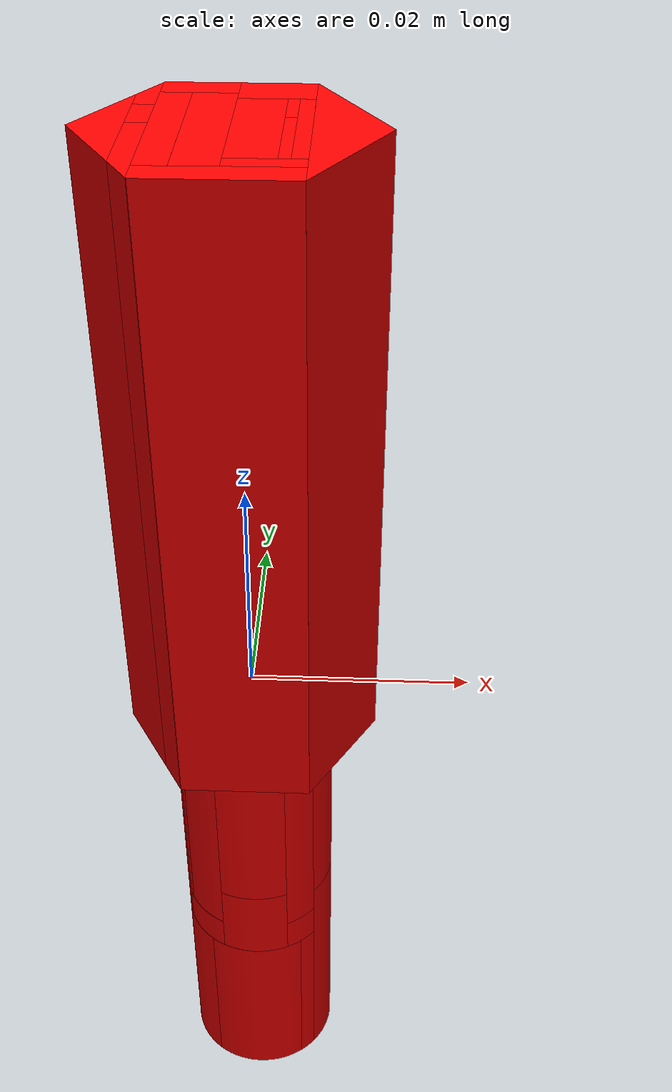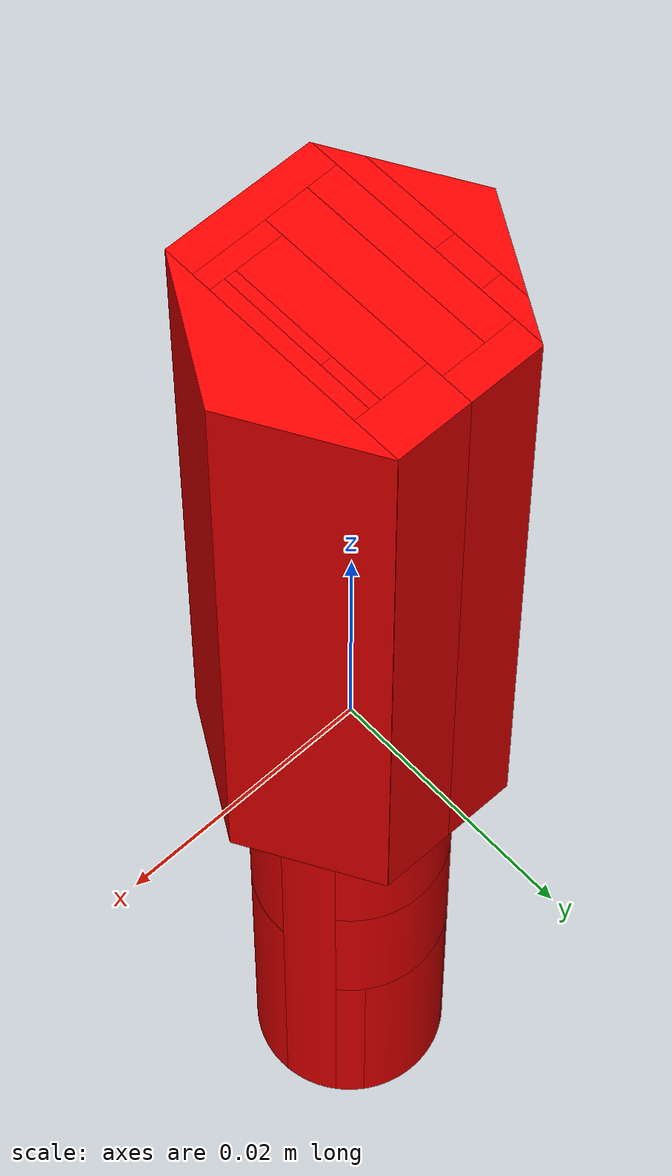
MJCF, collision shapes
<?xml version='1.0' encoding='utf-8'?>
<mujoco model="obj4">
  <asset>
    <mesh name="obj4" file="obj4.obj" scale="0.001 0.001 0.001" />
    <material name="mat4" rgba="1 0 0 1" />
    <mesh name="obj1_p0" file="obj4_part_0.obj" scale="0.001 0.001 0.001" />
    <mesh name="obj1_p1" file="obj4_part_1.obj" scale="0.001 0.001 0.001" />
    <mesh name="obj1_p2" file="obj4_part_2.obj" scale="0.001 0.001 0.001" />
    <mesh name="obj1_p3" file="obj4_part_3.obj" scale="0.001 0.001 0.001" />
    <mesh name="obj1_p4" file="obj4_part_4.obj" scale="0.001 0.001 0.001" />
    <mesh name="obj1_p5" file="obj4_part_5.obj" scale="0.001 0.001 0.001" />
    <mesh name="obj1_p6" file="obj4_part_6.obj" scale="0.001 0.001 0.001" />
    <mesh name="obj1_p7" file="obj4_part_7.obj" scale="0.001 0.001 0.001" />
    <mesh name="obj1_p8" file="obj4_part_8.obj" scale="0.001 0.001 0.001" />
    <mesh name="obj1_p9" file="obj4_part_9.obj" scale="0.001 0.001 0.001" />
    <mesh name="obj1_p10" file="obj4_part_10.obj" scale="0.001 0.001 0.001" />
    <mesh name="obj1_p11" file="obj4_part_11.obj" scale="0.001 0.001 0.001" />
    <mesh name="obj1_p12" file="obj4_part_12.obj" scale="0.001 0.001 0.001" />
    <mesh name="obj1_p13" file="obj4_part_13.obj" scale="0.001 0.001 0.001" />
    <mesh name="obj1_p14" file="obj4_part_14.obj" scale="0.001 0.001 0.001" />
    <mesh name="obj1_p15" file="obj4_part_15.obj" scale="0.001 0.001 0.001" />
    <mesh name="obj1_p16" file="obj4_part_16.obj" scale="0.001 0.001 0.001" />
    <mesh name="obj1_p17" file="obj4_part_17.obj" scale="0.001 0.001 0.001" />
    <mesh name="obj1_p18" file="obj4_part_18.obj" scale="0.001 0.001 0.001" />
    <mesh name="obj1_p19" file="obj4_part_19.obj" scale="0.001 0.001 0.001" />
    <mesh name="obj1_p20" file="obj4_part_20.obj" scale="0.001 0.001 0.001" />
    <mesh name="obj1_p21" file="obj4_part_21.obj" scale="0.001 0.001 0.001" />
    <mesh name="obj1_p22" file="obj4_part_22.obj" scale="0.001 0.001 0.001" />
    <mesh name="obj1_p23" file="obj4_part_23.obj" scale="0.001 0.001 0.001" />
    <mesh name="obj1_p24" file="obj4_part_24.obj" scale="0.001 0.001 0.001" />
    <mesh name="obj1_p25" file="obj4_part_25.obj" scale="0.001 0.001 0.001" />
    <mesh name="obj1_p26" file="obj4_part_26.obj" scale="0.001 0.001 0.001" />
    <mesh name="obj1_p27" file="obj4_part_27.obj" scale="0.001 0.001 0.001" />
    <mesh name="obj1_p28" file="obj4_part_28.obj" scale="0.001 0.001 0.001" />
    <mesh name="obj1_p29" file="obj4_part_29.obj" scale="0.001 0.001 0.001" />
    <mesh name="obj1_p30" file="obj4_part_30.obj" scale="0.001 0.001 0.001" />
    <mesh name="obj1_p31" file="obj4_part_31.obj" scale="0.001 0.001 0.001" />
    <mesh name="obj1_p32" file="obj4_part_32.obj" scale="0.001 0.001 0.001" />
    <mesh name="obj1_p33" file="obj4_part_33.obj" scale="0.001 0.001 0.001" />
    <mesh name="obj1_p34" file="obj4_part_34.obj" scale="0.001 0.001 0.001" />
    <mesh name="obj1_p35" file="obj4_part_35.obj" scale="0.001 0.001 0.001" />
    <mesh name="obj1_p36" file="obj4_part_36.obj" scale="0.001 0.001 0.001" />
  </asset>
  <worldbody>
    <body>
      <body name="object">
        <inertial pos="0 0 0" mass="0.1" diaginertia="0.0001 0.0001 0.0001" />
        <geom name="visual" mesh="obj4" type="mesh" group="1" contype="0" conaffinity="0" material="mat4" />
        <geom name="col_0" mesh="obj1_p0" type="mesh" group="0" contype="1" conaffinity="1" friction="0.95 0.3 0.1" solimp="0.9 0.95 0.001" solref="0.02 1" condim="4" material="mat4" />
        <geom name="col_1" mesh="obj1_p1" type="mesh" group="0" contype="1" conaffinity="1" friction="0.95 0.3 0.1" solimp="0.9 0.95 0.001" solref="0.02 1" condim="4" material="mat4" />
        <geom name="col_2" mesh="obj1_p2" type="mesh" group="0" contype="1" conaffinity="1" friction="0.95 0.3 0.1" solimp="0.9 0.95 0.001" solref="0.02 1" condim="4" material="mat4" />
        <geom name="col_3" mesh="obj1_p3" type="mesh" group="0" contype="1" conaffinity="1" friction="0.95 0.3 0.1" solimp="0.9 0.95 0.001" solref="0.02 1" condim="4" material="mat4" />
        <geom name="col_4" mesh="obj1_p4" type="mesh" group="0" contype="1" conaffinity="1" friction="0.95 0.3 0.1" solimp="0.9 0.95 0.001" solref="0.02 1" condim="4" material="mat4" />
        <geom name="col_5" mesh="obj1_p5" type="mesh" group="0" contype="1" conaffinity="1" friction="0.95 0.3 0.1" solimp="0.9 0.95 0.001" solref="0.02 1" condim="4" material="mat4" />
        <geom name="col_6" mesh="obj1_p6" type="mesh" group="0" contype="1" conaffinity="1" friction="0.95 0.3 0.1" solimp="0.9 0.95 0.001" solref="0.02 1" condim="4" material="mat4" />
        <geom name="col_7" mesh="obj1_p7" type="mesh" group="0" contype="1" conaffinity="1" friction="0.95 0.3 0.1" solimp="0.9 0.95 0.001" solref="0.02 1" condim="4" material="mat4" />
        <geom name="col_8" mesh="obj1_p8" type="mesh" group="0" contype="1" conaffinity="1" friction="0.95 0.3 0.1" solimp="0.9 0.95 0.001" solref="0.02 1" condim="4" material="mat4" />
        <geom name="col_9" mesh="obj1_p9" type="mesh" group="0" contype="1" conaffinity="1" friction="0.95 0.3 0.1" solimp="0.9 0.95 0.001" solref="0.02 1" condim="4" material="mat4" />
        <geom name="col_10" mesh="obj1_p10" type="mesh" group="0" contype="1" conaffinity="1" friction="0.95 0.3 0.1" solimp="0.9 0.95 0.001" solref="0.02 1" condim="4" material="mat4" />
        <geom name="col_11" mesh="obj1_p11" type="mesh" group="0" contype="1" conaffinity="1" friction="0.95 0.3 0.1" solimp="0.9 0.95 0.001" solref="0.02 1" condim="4" material="mat4" />
        <geom name="col_12" mesh="obj1_p12" type="mesh" group="0" contype="1" conaffinity="1" friction="0.95 0.3 0.1" solimp="0.9 0.95 0.001" solref="0.02 1" condim="4" material="mat4" />
        <geom name="col_13" mesh="obj1_p13" type="mesh" group="0" contype="1" conaffinity="1" friction="0.95 0.3 0.1" solimp="0.9 0.95 0.001" solref="0.02 1" condim="4" material="mat4" />
        <geom name="col_14" mesh="obj1_p14" type="mesh" group="0" contype="1" conaffinity="1" friction="0.95 0.3 0.1" solimp="0.9 0.95 0.001" solref="0.02 1" condim="4" material="mat4" />
        <geom name="col_15" mesh="obj1_p15" type="mesh" group="0" contype="1" conaffinity="1" friction="0.95 0.3 0.1" solimp="0.9 0.95 0.001" solref="0.02 1" condim="4" material="mat4" />
        <geom name="col_16" mesh="obj1_p16" type="mesh" group="0" contype="1" conaffinity="1" friction="0.95 0.3 0.1" solimp="0.9 0.95 0.001" solref="0.02 1" condim="4" material="mat4" />
        <geom name="col_17" mesh="obj1_p17" type="mesh" group="0" contype="1" conaffinity="1" friction="0.95 0.3 0.1" solimp="0.9 0.95 0.001" solref="0.02 1" condim="4" material="mat4" />
        <geom name="col_18" mesh="obj1_p18" type="mesh" group="0" contype="1" conaffinity="1" friction="0.95 0.3 0.1" solimp="0.9 0.95 0.001" solref="0.02 1" condim="4" material="mat4" />
        <geom name="col_19" mesh="obj1_p19" type="mesh" group="0" contype="1" conaffinity="1" friction="0.95 0.3 0.1" solimp="0.9 0.95 0.001" solref="0.02 1" condim="4" material="mat4" />
        <geom name="col_20" mesh="obj1_p20" type="mesh" group="0" contype="1" conaffinity="1" friction="0.95 0.3 0.1" solimp="0.9 0.95 0.001" solref="0.02 1" condim="4" material="mat4" />
        <geom name="col_21" mesh="obj1_p21" type="mesh" group="0" contype="1" conaffinity="1" friction="0.95 0.3 0.1" solimp="0.9 0.95 0.001" solref="0.02 1" condim="4" material="mat4" />
        <geom name="col_22" mesh="obj1_p22" type="mesh" group="0" contype="1" conaffinity="1" friction="0.95 0.3 0.1" solimp="0.9 0.95 0.001" solref="0.02 1" condim="4" material="mat4" />
        <geom name="col_23" mesh="obj1_p23" type="mesh" group="0" contype="1" conaffinity="1" friction="0.95 0.3 0.1" solimp="0.9 0.95 0.001" solref="0.02 1" condim="4" material="mat4" />
        <geom name="col_24" mesh="obj1_p24" type="mesh" group="0" contype="1" conaffinity="1" friction="0.95 0.3 0.1" solimp="0.9 0.95 0.001" solref="0.02 1" condim="4" material="mat4" />
        <geom name="col_25" mesh="obj1_p25" type="mesh" group="0" contype="1" conaffinity="1" friction="0.95 0.3 0.1" solimp="0.9 0.95 0.001" solref="0.02 1" condim="4" material="mat4" />
        <geom name="col_26" mesh="obj1_p26" type="mesh" group="0" contype="1" conaffinity="1" friction="0.95 0.3 0.1" solimp="0.9 0.95 0.001" solref="0.02 1" condim="4" material="mat4" />
        <geom name="col_27" mesh="obj1_p27" type="mesh" group="0" contype="1" conaffinity="1" friction="0.95 0.3 0.1" solimp="0.9 0.95 0.001" solref="0.02 1" condim="4" material="mat4" />
        <geom name="col_28" mesh="obj1_p28" type="mesh" group="0" contype="1" conaffinity="1" friction="0.95 0.3 0.1" solimp="0.9 0.95 0.001" solref="0.02 1" condim="4" material="mat4" />
        <geom name="col_29" mesh="obj1_p29" type="mesh" group="0" contype="1" conaffinity="1" friction="0.95 0.3 0.1" solimp="0.9 0.95 0.001" solref="0.02 1" condim="4" material="mat4" />
        <geom name="col_30" mesh="obj1_p30" type="mesh" group="0" contype="1" conaffinity="1" friction="0.95 0.3 0.1" solimp="0.9 0.95 0.001" solref="0.02 1" condim="4" material="mat4" />
        <geom name="col_31" mesh="obj1_p31" type="mesh" group="0" contype="1" conaffinity="1" friction="0.95 0.3 0.1" solimp="0.9 0.95 0.001" solref="0.02 1" condim="4" material="mat4" />
        <geom name="col_32" mesh="obj1_p32" type="mesh" group="0" contype="1" conaffinity="1" friction="0.95 0.3 0.1" solimp="0.9 0.95 0.001" solref="0.02 1" condim="4" material="mat4" />
        <geom name="col_33" mesh="obj1_p33" type="mesh" group="0" contype="1" conaffinity="1" friction="0.95 0.3 0.1" solimp="0.9 0.95 0.001" solref="0.02 1" condim="4" material="mat4" />
        <geom name="col_34" mesh="obj1_p34" type="mesh" group="0" contype="1" conaffinity="1" friction="0.95 0.3 0.1" solimp="0.9 0.95 0.001" solref="0.02 1" condim="4" material="mat4" />
        <geom name="col_35" mesh="obj1_p35" type="mesh" group="0" contype="1" conaffinity="1" friction="0.95 0.3 0.1" solimp="0.9 0.95 0.001" solref="0.02 1" condim="4" material="mat4" />
        <geom name="col_36" mesh="obj1_p36" type="mesh" group="0" contype="1" conaffinity="1" friction="0.95 0.3 0.1" solimp="0.9 0.95 0.001" solref="0.02 1" condim="4" material="mat4" />
      </body>
      <site name="bottom_site" pos="0 0 -0.025" size="0.005" rgba="0 0 0 0" />
      <site name="top_site" pos="0 0 0.025" size="0.005" rgba="0 0 0 0" />
      <site name="horizontal_radius_site" pos="0.03 0.03 0" size="0.005" rgba="0 0 0 0" />
    </body>
  </worldbody>
</mujoco>
